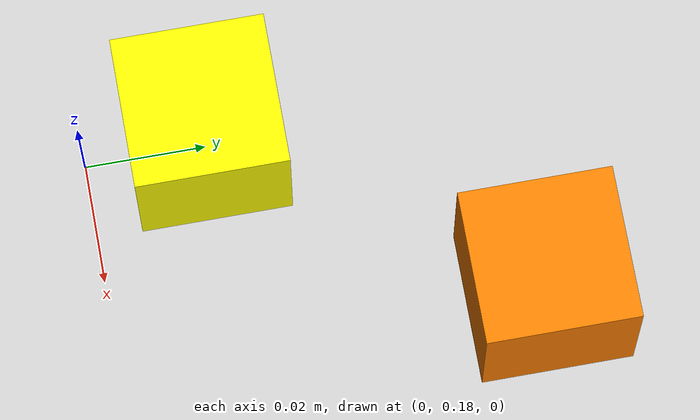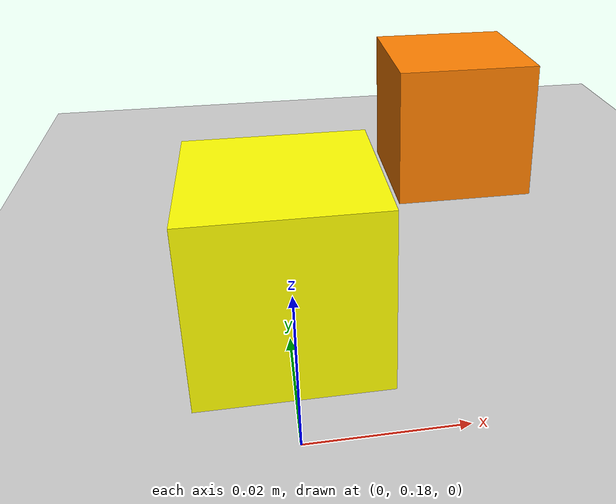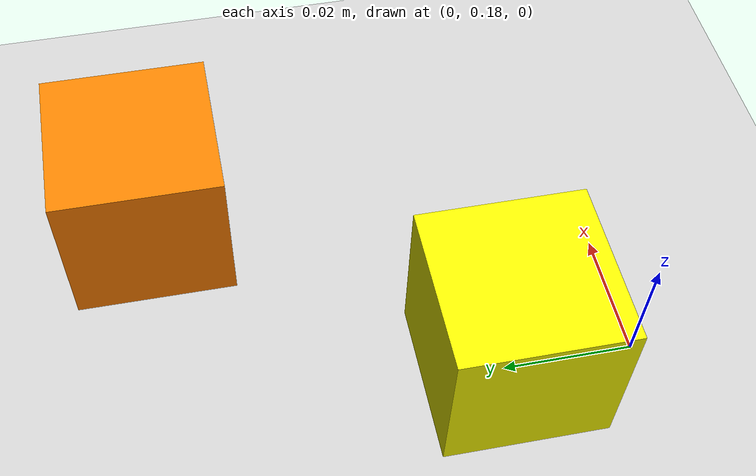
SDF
<?xml version="1.0"?>
<sdf version="1.7">
  <world name="cube_stacking_world">
    <!-- Gazebo Sim Systems -->
    <plugin filename="gz-sim-physics-system" name="gz::sim::systems::Physics">
    </plugin>
    <plugin filename="gz-sim-user-commands-system" name="gz::sim::systems::UserCommands">
    </plugin>
    <plugin filename="gz-sim-scene-broadcaster-system" name="gz::sim::systems::SceneBroadcaster">
    </plugin>
    <plugin filename="gz-sim-sensors-system" name="gz::sim::systems::Sensors">
      <render_engine>ogre2</render_engine>
    </plugin>

    <!-- To add realistic gravity, do: 0.0 0.0 -9.8, otherwise do 0.0 0.0 0.0 -->
    <gravity>0.0 0.0 -9.8</gravity>

    <!-- Include a model of the Sun from an external URI -->
    <include>
      <uri>
        https://fuel.gazebosim.org/1.0/OpenRobotics/models/Sun
      </uri>
    </include>

    <!-- Include a model of the Ground Plane from an external URI -->
    <include>
      <uri>
        https://fuel.gazebosim.org/1.0/OpenRobotics/models/Ground Plane
      </uri>
    </include>

    <!-- Define scene properties -->
    <scene>
      <shadows>false</shadows>
    </scene>

    <!-- Yellow Cube -->
    <model name="yellow_cube">
      <pose>0 0.20 0.0125 0 0 0</pose>
      <link name="link">
        <inertial>
          <mass>0.05</mass>
          <inertia>
            <ixx>5.2083e-6</ixx>
            <ixy>0</ixy>
            <ixz>0</ixz>
            <iyy>5.2083e-6</iyy>
            <iyz>0</iyz>
            <izz>5.2083e-6</izz>
          </inertia>
        </inertial>
        <collision name="collision">
          <geometry>
            <box>
              <size>0.025 0.025 0.025</size>
            </box>
          </geometry>
          <surface>
            <friction>
              <ode>
                <mu>10.0</mu>
                <mu2>10.0</mu2>
                <slip1>0.0</slip1>
                <slip2>0.0</slip2>
              </ode>
              <torsional>
                <coefficient>1.0</coefficient>
                <use_patch_radius>true</use_patch_radius>
                <surface_radius>0.01</surface_radius>
                <ode>
                  <slip>0.0</slip>
                </ode>
              </torsional>
            </friction>
            <contact>
              <ode>
                <kp>1e+6</kp>
                <kd>100</kd>
                <min_depth>0.001</min_depth>
                <max_vel>0.01</max_vel>
              </ode>
            </contact>
          </surface>
        </collision>
        <visual name="visual">
          <geometry>
            <box>
              <size>0.025 0.025 0.025</size>
            </box>
          </geometry>
          <material>
            <ambient>1.0 1.0 0.0 1</ambient>
            <diffuse>1.0 1.0 0.0 1</diffuse>
            <specular>0.1 0.1 0.1 1</specular>
          </material>
        </visual>
      </link>
      <static>false</static>
    </model>

    <!-- Orange Cube -->
    <model name="orange_cube">
      <pose>0.035 0.25 0.0125 0 0 0</pose>
      <link name="link">
        <inertial>
          <mass>0.05</mass>
          <inertia>
            <ixx>5.2083e-6</ixx>
            <ixy>0</ixy>
            <ixz>0</ixz>
            <iyy>5.2083e-6</iyy>
            <iyz>0</iyz>
            <izz>5.2083e-6</izz>
          </inertia>
        </inertial>
        <collision name="collision">
          <geometry>
            <box>
              <size>0.025 0.025 0.025</size>
            </box>
          </geometry>
          <surface>
            <friction>
              <ode>
                <mu>5.0</mu>
                <mu2>5.0</mu2>
                <slip1>0.0</slip1>
                <slip2>0.0</slip2>
              </ode>
              <torsional>
                <coefficient>1.0</coefficient>
                <use_patch_radius>true</use_patch_radius>
                <surface_radius>0.01</surface_radius>
                <ode>
                  <slip>0.0</slip>
                </ode>
              </torsional>
            </friction>
            <contact>
              <ode>
                <kp>1e+6</kp>
                <kd>100</kd>
                <min_depth>0.001</min_depth>
                <max_vel>0.01</max_vel>
              </ode>
            </contact>
          </surface>
        </collision>
        <visual name="visual">
          <geometry>
            <box>
              <size>0.025 0.025 0.025</size>
            </box>
          </geometry>
          <material>
            <ambient>1.0 0.5 0.0 1</ambient>
            <diffuse>1.0 0.5 0.0 1</diffuse>
            <specular>0.1 0.1 0.1 1</specular>
          </material>
        </visual>
      </link>
      <static>false</static>
    </model>

  </world>
</sdf>
